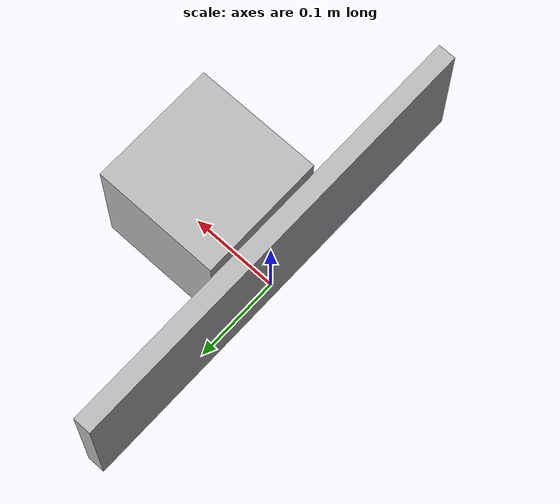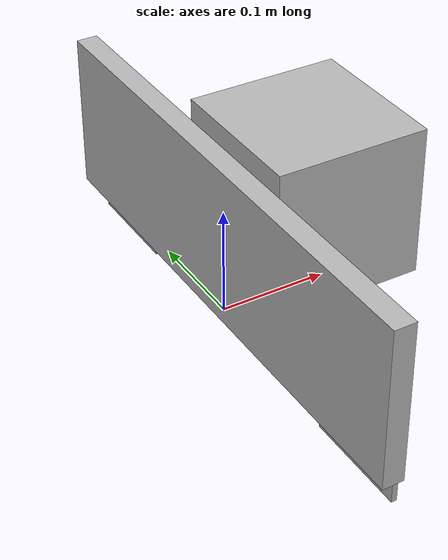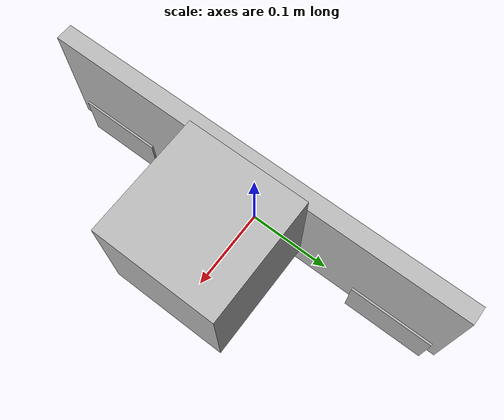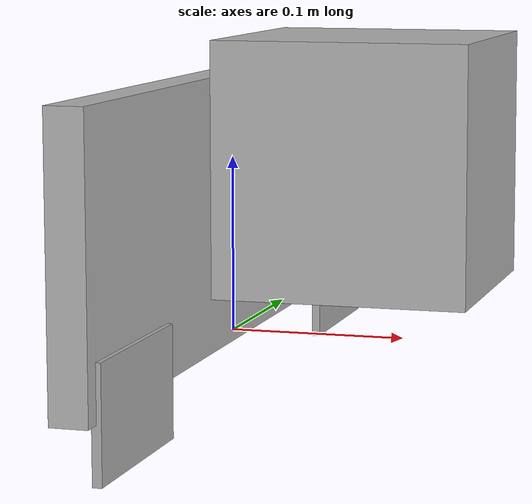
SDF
<?xml version='1.0'?>
<sdf version='1.6'>
  <model name='two_reflector_marker3'>
    <static>1</static>

    <link name='link_structure'>
      <pose frame=''>0 0 0.075 0 -0 0.0</pose>
      <gravity>0</gravity>

      <visual name='visual0'>
        <pose frame=''>0 0 -0.0 0 -0 0</pose>
        <geometry>
          <box><size>0.020 0.5 0.15</size></box>
        </geometry>
      </visual>
      <collision name='collision0'>
        <pose frame=''>0 0 -0.0 0 -0 0</pose>
        <geometry>
          <box><size>0.020 0.5 0.15</size></box>
        </geometry>
      </collision>
    </link>

    <link name='link_reflector_1'>
      <pose frame=''>0.01 0.19 0.0 0 -0 0.0</pose>
      <gravity>0</gravity>

      <visual name='visual0'>
        <pose frame=''>0 0 -0.0 0 -0 0</pose>
        <geometry>
          <box><size>0.005 0.1 0.06</size></box>
        </geometry>
	<material>
          <lighting>1</lighting>
          <ambient>0.3 0.3 0.3 1</ambient>
          <diffuse>0.7 0.7 0.7 1</diffuse>
          <specular>0.01 0.01 0.01 1</specular>
          <emissive>0 0 0 1</emissive>
          <shader type='vertex'>
            <normal_map>__default__</normal_map>
          </shader>
        </material>
      </visual>
      <collision name='collision0'>
        <pose frame=''>0 0 -0.0 0 -0 0</pose>
        <geometry>
          <box><size>0.005 0.1 0.06</size></box>
        </geometry>
	<laser_retro>8000</laser_retro>
      </collision>
    </link>

    <link name='link_reflector_2'>
      <pose frame=''>0.01 -0.19 0.0 0 -0 0.0</pose>
      <gravity>0</gravity>

      <visual name='visual0'>
        <pose frame=''>0 0 -0.0 0 -0 0</pose>
        <geometry>
          <box><size>0.005 0.1 0.06</size></box>
        </geometry>
	<material>
          <lighting>1</lighting>
          <ambient>0.3 0.3 0.3 1</ambient>
          <diffuse>0.7 0.7 0.7 1</diffuse>
          <specular>0.01 0.01 0.01 1</specular>
          <emissive>0 0 0 1</emissive>
          <shader type='vertex'>
            <normal_map>__default__</normal_map>
          </shader>
        </material>
      </visual>
      <collision name='collision0'>
        <pose frame=''>0 0 -0.0 0 -0 0</pose>
        <geometry>
          <box><size>0.005 0.1 0.06</size></box>
        </geometry>
	<laser_retro>8000</laser_retro>
      </collision>
    </link>

    <link name='link_qr_code'>
      <pose frame=''>0.08 0 0.1 0 0 1.57</pose>
      <gravity>0</gravity>
      <visual name='visual'>
        <pose frame=''>0 0 0 0 -0 0</pose>
        <geometry>
          <box>
            <size>0.14 0.14 0.14</size>
          </box>
        </geometry>
        <material>
          <script>
		<uri>model://marker3_border_12cm/material/scripts</uri>
		<uri>model://marker3_border_12cm/material/textures</uri>
		<name>ARtrack/marker3_border_12cm</name>
          </script>
        </material>

      </visual>
    </link>

  </model>
</sdf>
